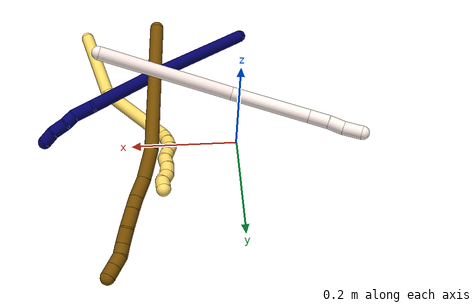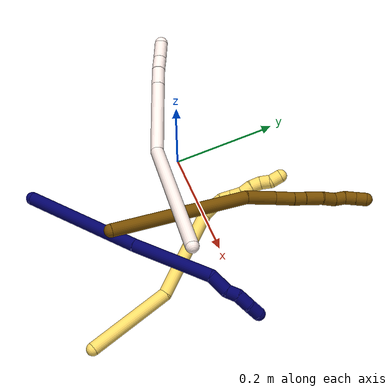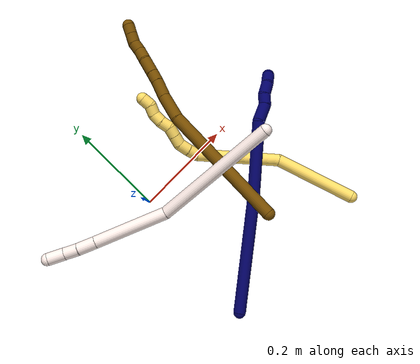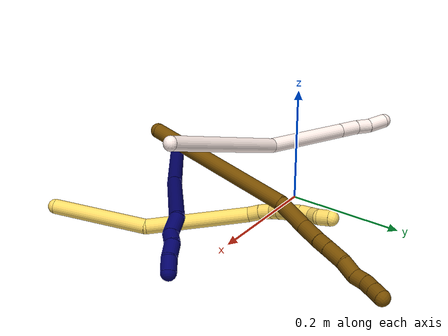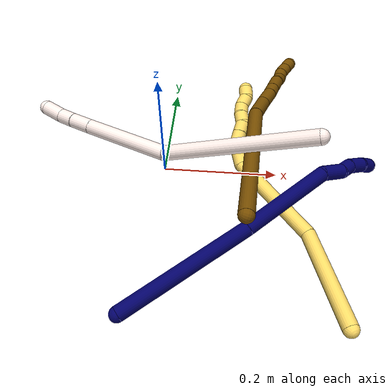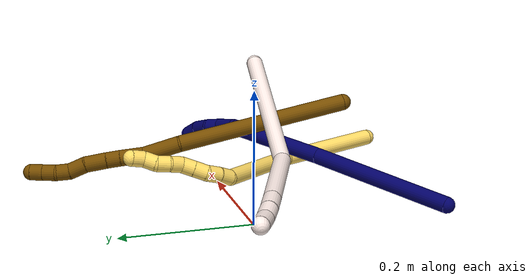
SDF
<sdf version="1.7">
 <world name="default">
  <model name="5">
   <static>0</static>
   <link name="5">
    <collision name="collision-cylinder-e_1_1_4">
     <pose>-0.013303 0.025041 -0.077639 -2.8296 -0.161655 0.95122</pose>
     <geometry><cylinder><radius>0.0125</radius><length>0.16531</length></cylinder></geometry>
     <surface>
      <friction><ode><mu>1.16</mu><mu2>1.16</mu2><slip1>0</slip1><slip2>0</slip2></ode></friction>
      <contact><ode><kp>1e+06</kp><kd>1</kd><max_vel>0</max_vel><min_depth>0.001</min_depth></ode></contact>
     </surface>
    </collision>
    <visual name="visual-cylinder-e_1_1_4">
     <pose>-0.013303 0.025041 -0.077639 -2.8296 -0.161655 0.95122</pose>
     <geometry><cylinder><radius>0.0125</radius><length>0.16531</length></cylinder></geometry>
     <material><ambient>1 0.858824 0.4 1</ambient></material>
    </visual>
    <collision name="collision-cylinder-e_2_4_5">
     <pose>-0.070848 0.05573 -0.22751 -3.06356 -0.548193 2.86569</pose>
     <geometry><cylinder><radius>0.0125</radius><length>0.169784</length></cylinder></geometry>
     <surface>
      <friction><ode><mu>1.16</mu><mu2>1.16</mu2><slip1>0</slip1><slip2>0</slip2></ode></friction>
      <contact><ode><kp>1e+06</kp><kd>1</kd><max_vel>0</max_vel><min_depth>0.001</min_depth></ode></contact>
     </surface>
    </collision>
    <visual name="visual-cylinder-e_2_4_5">
     <pose>-0.070848 0.05573 -0.22751 -3.06356 -0.548193 2.86569</pose>
     <geometry><cylinder><radius>0.0125</radius><length>0.169784</length></cylinder></geometry>
     <material><ambient>1 0.858824 0.4 1</ambient></material>
    </visual>
    <collision name="collision-cylinder-e_3_5_6">
     <pose>-0.119962 0.067182 -0.307572 -2.50363 -0.463655 1.2412</pose>
     <geometry><cylinder><radius>0.0125</radius><length>0.021795</length></cylinder></geometry>
     <surface>
      <friction><ode><mu>1.16</mu><mu2>1.16</mu2><slip1>0</slip1><slip2>0</slip2></ode></friction>
      <contact><ode><kp>1e+06</kp><kd>1</kd><max_vel>0</max_vel><min_depth>0.001</min_depth></ode></contact>
     </surface>
    </collision>
    <visual name="visual-cylinder-e_3_5_6">
     <pose>-0.119962 0.067182 -0.307572 -2.50363 -0.463655 1.2412</pose>
     <geometry><cylinder><radius>0.0125</radius><length>0.021795</length></cylinder></geometry>
     <material><ambient>1 0.858824 0.4 1</ambient></material>
    </visual>
    <collision name="collision-cylinder-e_4_6_7">
     <pose>-0.128486 0.079052 -0.323874 -2.5203 -0.336918 0.974331</pose>
     <geometry><cylinder><radius>0.0125</radius><length>0.02208</length></cylinder></geometry>
     <surface>
      <friction><ode><mu>1.16</mu><mu2>1.16</mu2><slip1>0</slip1><slip2>0</slip2></ode></friction>
      <contact><ode><kp>1e+06</kp><kd>1</kd><max_vel>0</max_vel><min_depth>0.001</min_depth></ode></contact>
     </surface>
    </collision>
    <visual name="visual-cylinder-e_4_6_7">
     <pose>-0.128486 0.079052 -0.323874 -2.5203 -0.336918 0.974331</pose>
     <geometry><cylinder><radius>0.0125</radius><length>0.02208</length></cylinder></geometry>
     <material><ambient>1 0.858824 0.4 1</ambient></material>
    </visual>
    <collision name="collision-cylinder-e_5_7_8">
     <pose>-0.132696 0.093592 -0.338011 -2.16 -0.054917 0.102696</pose>
     <geometry><cylinder><radius>0.0125</radius><length>0.020418</length></cylinder></geometry>
     <surface>
      <friction><ode><mu>1.16</mu><mu2>1.16</mu2><slip1>0</slip1><slip2>0</slip2></ode></friction>
      <contact><ode><kp>1e+06</kp><kd>1</kd><max_vel>0</max_vel><min_depth>0.001</min_depth></ode></contact>
     </surface>
    </collision>
    <visual name="visual-cylinder-e_5_7_8">
     <pose>-0.132696 0.093592 -0.338011 -2.16 -0.054917 0.102696</pose>
     <geometry><cylinder><radius>0.0125</radius><length>0.020418</length></cylinder></geometry>
     <material><ambient>1 0.858824 0.4 1</ambient></material>
    </visual>
    <collision name="collision-cylinder-e_6_8_9">
     <pose>-0.133831 0.110313 -0.349383 -2.17625 -0.057262 0.109198</pose>
     <geometry><cylinder><radius>0.0125</radius><length>0.020089</length></cylinder></geometry>
     <surface>
      <friction><ode><mu>1.16</mu><mu2>1.16</mu2><slip1>0</slip1><slip2>0</slip2></ode></friction>
      <contact><ode><kp>1e+06</kp><kd>1</kd><max_vel>0</max_vel><min_depth>0.001</min_depth></ode></contact>
     </surface>
    </collision>
    <visual name="visual-cylinder-e_6_8_9">
     <pose>-0.133831 0.110313 -0.349383 -2.17625 -0.057262 0.109198</pose>
     <geometry><cylinder><radius>0.0125</radius><length>0.020089</length></cylinder></geometry>
     <material><ambient>1 0.858824 0.4 1</ambient></material>
    </visual>
    <collision name="collision-cylinder-e_7_9_10">
     <pose>-0.137053 0.123781 -0.363444 -2.58285 -0.2625 0.862545</pose>
     <geometry><cylinder><radius>0.0125</radius><length>0.020401</length></cylinder></geometry>
     <surface>
      <friction><ode><mu>1.16</mu><mu2>1.16</mu2><slip1>0</slip1><slip2>0</slip2></ode></friction>
      <contact><ode><kp>1e+06</kp><kd>1</kd><max_vel>0</max_vel><min_depth>0.001</min_depth></ode></contact>
     </surface>
    </collision>
    <visual name="visual-cylinder-e_7_9_10">
     <pose>-0.137053 0.123781 -0.363444 -2.58285 -0.2625 0.862545</pose>
     <geometry><cylinder><radius>0.0125</radius><length>0.020401</length></cylinder></geometry>
     <material><ambient>1 0.858824 0.4 1</ambient></material>
    </visual>
    <collision name="collision-cylinder-e_8_10_11">
     <pose>-0.140044 0.135146 -0.379722 -2.48224 -0.034261 0.100056</pose>
     <geometry><cylinder><radius>0.0125</radius><length>0.020067</length></cylinder></geometry>
     <surface>
      <friction><ode><mu>1.16</mu><mu2>1.16</mu2><slip1>0</slip1><slip2>0</slip2></ode></friction>
      <contact><ode><kp>1e+06</kp><kd>1</kd><max_vel>0</max_vel><min_depth>0.001</min_depth></ode></contact>
     </surface>
    </collision>
    <visual name="visual-cylinder-e_8_10_11">
     <pose>-0.140044 0.135146 -0.379722 -2.48224 -0.034261 0.100056</pose>
     <geometry><cylinder><radius>0.0125</radius><length>0.020067</length></cylinder></geometry>
     <material><ambient>1 0.858824 0.4 1</ambient></material>
    </visual>
    <collision name="collision-cylinder-e_9_11_12">
     <pose>-0.139606 0.150005 -0.392519 -2.08038 0.078068 -0.132928</pose>
     <geometry><cylinder><radius>0.0125</radius><length>0.02003</length></cylinder></geometry>
     <surface>
      <friction><ode><mu>1.16</mu><mu2>1.16</mu2><slip1>0</slip1><slip2>0</slip2></ode></friction>
      <contact><ode><kp>1e+06</kp><kd>1</kd><max_vel>0</max_vel><min_depth>0.001</min_depth></ode></contact>
     </surface>
    </collision>
    <visual name="visual-cylinder-e_9_11_12">
     <pose>-0.139606 0.150005 -0.392519 -2.08038 0.078068 -0.132928</pose>
     <geometry><cylinder><radius>0.0125</radius><length>0.02003</length></cylinder></geometry>
     <material><ambient>1 0.858824 0.4 1</ambient></material>
    </visual>
    <collision name="collision-cylinder-e_10_12_2">
     <pose>-0.140533 0.164527 -0.405366 -2.51237 -0.171415 0.516263</pose>
     <geometry><cylinder><radius>0.0125</radius><length>0.020025</length></cylinder></geometry>
     <surface>
      <friction><ode><mu>1.16</mu><mu2>1.16</mu2><slip1>0</slip1><slip2>0</slip2></ode></friction>
      <contact><ode><kp>1e+06</kp><kd>1</kd><max_vel>0</max_vel><min_depth>0.001</min_depth></ode></contact>
     </surface>
    </collision>
    <visual name="visual-cylinder-e_10_12_2">
     <pose>-0.140533 0.164527 -0.405366 -2.51237 -0.171415 0.516263</pose>
     <geometry><cylinder><radius>0.0125</radius><length>0.020025</length></cylinder></geometry>
     <material><ambient>1 0.858824 0.4 1</ambient></material>
    </visual>
    <collision name="collision-sphere-2">
     <pose>-0.142241 0.170333 -0.413342 0 -0 0</pose>
     <geometry><sphere><radius>0.0125</radius></sphere></geometry>
     <surface>
      <friction><ode><mu>1.16</mu><mu2>1.16</mu2><slip1>0</slip1><slip2>0</slip2></ode></friction>
      <contact><ode><kp>1e+06</kp><kd>1</kd><max_vel>0</max_vel><min_depth>0.001</min_depth></ode></contact>
     </surface>
    </collision>
    <visual name="visual-sphere-2">
     <pose>-0.142241 0.170333 -0.413342 0 -0 0</pose>
     <geometry><sphere><radius>0.0125</radius></sphere></geometry>
     <material><ambient>1 0.858824 0.4 1</ambient></material>
    </visual>
    <collision name="collision-sphere-12">
     <pose>-0.138825 0.158721 -0.397389 0 -0 0</pose>
     <geometry><sphere><radius>0.0125</radius></sphere></geometry>
     <surface>
      <friction><ode><mu>1.16</mu><mu2>1.16</mu2><slip1>0</slip1><slip2>0</slip2></ode></friction>
      <contact><ode><kp>1e+06</kp><kd>1</kd><max_vel>0</max_vel><min_depth>0.001</min_depth></ode></contact>
     </surface>
    </collision>
    <visual name="visual-sphere-12">
     <pose>-0.138825 0.158721 -0.397389 0 -0 0</pose>
     <geometry><sphere><radius>0.0125</radius></sphere></geometry>
     <material><ambient>1 0.858824 0.4 1</ambient></material>
    </visual>
    <collision name="collision-sphere-11">
     <pose>-0.140387 0.141289 -0.387648 0 -0 0</pose>
     <geometry><sphere><radius>0.0125</radius></sphere></geometry>
     <surface>
      <friction><ode><mu>1.16</mu><mu2>1.16</mu2><slip1>0</slip1><slip2>0</slip2></ode></friction>
      <contact><ode><kp>1e+06</kp><kd>1</kd><max_vel>0</max_vel><min_depth>0.001</min_depth></ode></contact>
     </surface>
    </collision>
    <visual name="visual-sphere-11">
     <pose>-0.140387 0.141289 -0.387648 0 -0 0</pose>
     <geometry><sphere><radius>0.0125</radius></sphere></geometry>
     <material><ambient>1 0.858824 0.4 1</ambient></material>
    </visual>
    <collision name="collision-sphere-10">
     <pose>-0.1397 0.129003 -0.371797 0 -0 0</pose>
     <geometry><sphere><radius>0.0125</radius></sphere></geometry>
     <surface>
      <friction><ode><mu>1.16</mu><mu2>1.16</mu2><slip1>0</slip1><slip2>0</slip2></ode></friction>
      <contact><ode><kp>1e+06</kp><kd>1</kd><max_vel>0</max_vel><min_depth>0.001</min_depth></ode></contact>
     </surface>
    </collision>
    <visual name="visual-sphere-10">
     <pose>-0.1397 0.129003 -0.371797 0 -0 0</pose>
     <geometry><sphere><radius>0.0125</radius></sphere></geometry>
     <material><ambient>1 0.858824 0.4 1</ambient></material>
    </visual>
    <collision name="collision-sphere-9">
     <pose>-0.134406 0.118558 -0.355091 0 -0 0</pose>
     <geometry><sphere><radius>0.0125</radius></sphere></geometry>
     <surface>
      <friction><ode><mu>1.16</mu><mu2>1.16</mu2><slip1>0</slip1><slip2>0</slip2></ode></friction>
      <contact><ode><kp>1e+06</kp><kd>1</kd><max_vel>0</max_vel><min_depth>0.001</min_depth></ode></contact>
     </surface>
    </collision>
    <visual name="visual-sphere-9">
     <pose>-0.134406 0.118558 -0.355091 0 -0 0</pose>
     <geometry><sphere><radius>0.0125</radius></sphere></geometry>
     <material><ambient>1 0.858824 0.4 1</ambient></material>
    </visual>
    <collision name="collision-sphere-4">
     <pose>-0.026607 0.050082 -0.155278 0 -0 0</pose>
     <geometry><sphere><radius>0.0125</radius></sphere></geometry>
     <surface>
      <friction><ode><mu>1.16</mu><mu2>1.16</mu2><slip1>0</slip1><slip2>0</slip2></ode></friction>
      <contact><ode><kp>1e+06</kp><kd>1</kd><max_vel>0</max_vel><min_depth>0.001</min_depth></ode></contact>
     </surface>
    </collision>
    <visual name="visual-sphere-4">
     <pose>-0.026607 0.050082 -0.155278 0 -0 0</pose>
     <geometry><sphere><radius>0.0125</radius></sphere></geometry>
     <material><ambient>1 0.858824 0.4 1</ambient></material>
    </visual>
    <collision name="collision-sphere-1">
     <geometry><sphere><radius>0.0125</radius></sphere></geometry>
     <surface>
      <friction><ode><mu>1.16</mu><mu2>1.16</mu2><slip1>0</slip1><slip2>0</slip2></ode></friction>
      <contact><ode><kp>1e+06</kp><kd>1</kd><max_vel>0</max_vel><min_depth>0.001</min_depth></ode></contact>
     </surface>
    </collision>
    <visual name="visual-sphere-1">
     <geometry><sphere><radius>0.0125</radius></sphere></geometry>
     <material><ambient>1 0.858824 0.4 1</ambient></material>
    </visual>
    <collision name="collision-sphere-8">
     <pose>-0.133256 0.102067 -0.343676 0 -0 0</pose>
     <geometry><sphere><radius>0.0125</radius></sphere></geometry>
     <surface>
      <friction><ode><mu>1.16</mu><mu2>1.16</mu2><slip1>0</slip1><slip2>0</slip2></ode></friction>
      <contact><ode><kp>1e+06</kp><kd>1</kd><max_vel>0</max_vel><min_depth>0.001</min_depth></ode></contact>
     </surface>
    </collision>
    <visual name="visual-sphere-8">
     <pose>-0.133256 0.102067 -0.343676 0 -0 0</pose>
     <geometry><sphere><radius>0.0125</radius></sphere></geometry>
     <material><ambient>1 0.858824 0.4 1</ambient></material>
    </visual>
    <collision name="collision-sphere-5">
     <pose>-0.115089 0.061378 -0.299742 0 -0 0</pose>
     <geometry><sphere><radius>0.0125</radius></sphere></geometry>
     <surface>
      <friction><ode><mu>1.16</mu><mu2>1.16</mu2><slip1>0</slip1><slip2>0</slip2></ode></friction>
      <contact><ode><kp>1e+06</kp><kd>1</kd><max_vel>0</max_vel><min_depth>0.001</min_depth></ode></contact>
     </surface>
    </collision>
    <visual name="visual-sphere-5">
     <pose>-0.115089 0.061378 -0.299742 0 -0 0</pose>
     <geometry><sphere><radius>0.0125</radius></sphere></geometry>
     <material><ambient>1 0.858824 0.4 1</ambient></material>
    </visual>
    <collision name="collision-sphere-6">
     <pose>-0.124836 0.072987 -0.315402 0 -0 0</pose>
     <geometry><sphere><radius>0.0125</radius></sphere></geometry>
     <surface>
      <friction><ode><mu>1.16</mu><mu2>1.16</mu2><slip1>0</slip1><slip2>0</slip2></ode></friction>
      <contact><ode><kp>1e+06</kp><kd>1</kd><max_vel>0</max_vel><min_depth>0.001</min_depth></ode></contact>
     </surface>
    </collision>
    <visual name="visual-sphere-6">
     <pose>-0.124836 0.072987 -0.315402 0 -0 0</pose>
     <geometry><sphere><radius>0.0125</radius></sphere></geometry>
     <material><ambient>1 0.858824 0.4 1</ambient></material>
    </visual>
    <collision name="collision-sphere-7">
     <pose>-0.132135 0.085117 -0.332347 0 -0 0</pose>
     <geometry><sphere><radius>0.0125</radius></sphere></geometry>
     <surface>
      <friction><ode><mu>1.16</mu><mu2>1.16</mu2><slip1>0</slip1><slip2>0</slip2></ode></friction>
      <contact><ode><kp>1e+06</kp><kd>1</kd><max_vel>0</max_vel><min_depth>0.001</min_depth></ode></contact>
     </surface>
    </collision>
    <visual name="visual-sphere-7">
     <pose>-0.132135 0.085117 -0.332347 0 -0 0</pose>
     <geometry><sphere><radius>0.0125</radius></sphere></geometry>
     <material><ambient>1 0.858824 0.4 1</ambient></material>
    </visual>
    <inertial>
     <pose>-0.072589 0.06495 -0.220503 0 -0 0</pose>
     <mass>0.5</mass>
     <inertia>
      <ixx>0.000286</ixx>
      <ixy>0</ixy>
      <ixz>0</ixz>
      <iyy>0.000623</iyy>
      <iyz>0</iyz>
      <izz>9.6e-05</izz>
     </inertia>
    </inertial>
   </link>
   <pose>0.297175 -0.288507 0.020417 1.0368 0.754794 0.025374</pose>
  </model>
  <model name="7">
   <static>0</static>
   <link name="7">
    <collision name="collision-cylinder-e_1_1_4">
     <pose>0.041002 0.048602 0.096098 -0.468242 0.363798 -0.087677</pose>
     <geometry><cylinder><radius>0.0125</radius><length>0.230461</length></cylinder></geometry>
     <surface>
      <friction><ode><mu>1.16</mu><mu2>1.16</mu2><slip1>0</slip1><slip2>0</slip2></ode></friction>
      <contact><ode><kp>1e+06</kp><kd>1</kd><max_vel>0</max_vel><min_depth>0.001</min_depth></ode></contact>
     </surface>
    </collision>
    <visual name="visual-cylinder-e_1_1_4">
     <pose>0.041002 0.048602 0.096098 -0.468242 0.363798 -0.087677</pose>
     <geometry><cylinder><radius>0.0125</radius><length>0.230461</length></cylinder></geometry>
     <material><ambient>0.003922 0 0.403922 1</ambient></material>
    </visual>
    <collision name="collision-cylinder-e_2_4_5">
     <pose>0.113108 0.127597 0.258625 -0.429092 0.402527 -0.088856</pose>
     <geometry><cylinder><radius>0.0125</radius><length>0.158796</length></cylinder></geometry>
     <surface>
      <friction><ode><mu>1.16</mu><mu2>1.16</mu2><slip1>0</slip1><slip2>0</slip2></ode></friction>
      <contact><ode><kp>1e+06</kp><kd>1</kd><max_vel>0</max_vel><min_depth>0.001</min_depth></ode></contact>
     </surface>
    </collision>
    <visual name="visual-cylinder-e_2_4_5">
     <pose>0.113108 0.127597 0.258625 -0.429092 0.402527 -0.088856</pose>
     <geometry><cylinder><radius>0.0125</radius><length>0.158796</length></cylinder></geometry>
     <material><ambient>0.003922 0 0.403922 1</ambient></material>
    </visual>
    <collision name="collision-cylinder-e_3_5_6">
     <pose>0.143293 0.164333 0.342697 -0.345155 -0.048934 0.008531</pose>
     <geometry><cylinder><radius>0.0125</radius><length>0.037542</length></cylinder></geometry>
     <surface>
      <friction><ode><mu>1.16</mu><mu2>1.16</mu2><slip1>0</slip1><slip2>0</slip2></ode></friction>
      <contact><ode><kp>1e+06</kp><kd>1</kd><max_vel>0</max_vel><min_depth>0.001</min_depth></ode></contact>
     </surface>
    </collision>
    <visual name="visual-cylinder-e_3_5_6">
     <pose>0.143293 0.164333 0.342697 -0.345155 -0.048934 0.008531</pose>
     <geometry><cylinder><radius>0.0125</radius><length>0.037542</length></cylinder></geometry>
     <material><ambient>0.003922 0 0.403922 1</ambient></material>
    </visual>
    <collision name="collision-cylinder-e_4_6_7">
     <pose>0.145418 0.171748 0.370747 -0.10255 0.283052 -0.014624</pose>
     <geometry><cylinder><radius>0.0125</radius><length>0.021792</length></cylinder></geometry>
     <surface>
      <friction><ode><mu>1.16</mu><mu2>1.16</mu2><slip1>0</slip1><slip2>0</slip2></ode></friction>
      <contact><ode><kp>1e+06</kp><kd>1</kd><max_vel>0</max_vel><min_depth>0.001</min_depth></ode></contact>
     </surface>
    </collision>
    <visual name="visual-cylinder-e_4_6_7">
     <pose>0.145418 0.171748 0.370747 -0.10255 0.283052 -0.014624</pose>
     <geometry><cylinder><radius>0.0125</radius><length>0.021792</length></cylinder></geometry>
     <material><ambient>0.003922 0 0.403922 1</ambient></material>
    </visual>
    <collision name="collision-cylinder-e_5_7_8">
     <pose>0.147781 0.17562 0.394431 -0.207908 -0.050065 0.005224</pose>
     <geometry><cylinder><radius>0.0125</radius><length>0.027171</length></cylinder></geometry>
     <surface>
      <friction><ode><mu>1.16</mu><mu2>1.16</mu2><slip1>0</slip1><slip2>0</slip2></ode></friction>
      <contact><ode><kp>1e+06</kp><kd>1</kd><max_vel>0</max_vel><min_depth>0.001</min_depth></ode></contact>
     </surface>
    </collision>
    <visual name="visual-cylinder-e_5_7_8">
     <pose>0.147781 0.17562 0.394431 -0.207908 -0.050065 0.005224</pose>
     <geometry><cylinder><radius>0.0125</radius><length>0.027171</length></cylinder></geometry>
     <material><ambient>0.003922 0 0.403922 1</ambient></material>
    </visual>
    <collision name="collision-cylinder-e_6_8_2">
     <pose>0.145517 0.177542 0.41969 0.073211 -0.131089 -0.004808</pose>
     <geometry><cylinder><radius>0.0125</radius><length>0.024238</length></cylinder></geometry>
     <surface>
      <friction><ode><mu>1.16</mu><mu2>1.16</mu2><slip1>0</slip1><slip2>0</slip2></ode></friction>
      <contact><ode><kp>1e+06</kp><kd>1</kd><max_vel>0</max_vel><min_depth>0.001</min_depth></ode></contact>
     </surface>
    </collision>
    <visual name="visual-cylinder-e_6_8_2">
     <pose>0.145517 0.177542 0.41969 0.073211 -0.131089 -0.004808</pose>
     <geometry><cylinder><radius>0.0125</radius><length>0.024238</length></cylinder></geometry>
     <material><ambient>0.003922 0 0.403922 1</ambient></material>
    </visual>
    <collision name="collision-sphere-2">
     <pose>0.143933 0.176663 0.431673 0 -0 0</pose>
     <geometry><sphere><radius>0.0125</radius></sphere></geometry>
     <surface>
      <friction><ode><mu>1.16</mu><mu2>1.16</mu2><slip1>0</slip1><slip2>0</slip2></ode></friction>
      <contact><ode><kp>1e+06</kp><kd>1</kd><max_vel>0</max_vel><min_depth>0.001</min_depth></ode></contact>
     </surface>
    </collision>
    <visual name="visual-sphere-2">
     <pose>0.143933 0.176663 0.431673 0 -0 0</pose>
     <geometry><sphere><radius>0.0125</radius></sphere></geometry>
     <material><ambient>0.003922 0 0.403922 1</ambient></material>
    </visual>
    <collision name="collision-sphere-4">
     <pose>0.082004 0.097204 0.192195 0 -0 0</pose>
     <geometry><sphere><radius>0.0125</radius></sphere></geometry>
     <surface>
      <friction><ode><mu>1.16</mu><mu2>1.16</mu2><slip1>0</slip1><slip2>0</slip2></ode></friction>
      <contact><ode><kp>1e+06</kp><kd>1</kd><max_vel>0</max_vel><min_depth>0.001</min_depth></ode></contact>
     </surface>
    </collision>
    <visual name="visual-sphere-4">
     <pose>0.082004 0.097204 0.192195 0 -0 0</pose>
     <geometry><sphere><radius>0.0125</radius></sphere></geometry>
     <material><ambient>0.003922 0 0.403922 1</ambient></material>
    </visual>
    <collision name="collision-sphere-1">
     <geometry><sphere><radius>0.0125</radius></sphere></geometry>
     <surface>
      <friction><ode><mu>1.16</mu><mu2>1.16</mu2><slip1>0</slip1><slip2>0</slip2></ode></friction>
      <contact><ode><kp>1e+06</kp><kd>1</kd><max_vel>0</max_vel><min_depth>0.001</min_depth></ode></contact>
     </surface>
    </collision>
    <visual name="visual-sphere-1">
     <geometry><sphere><radius>0.0125</radius></sphere></geometry>
     <material><ambient>0.003922 0 0.403922 1</ambient></material>
    </visual>
    <collision name="collision-sphere-8">
     <pose>0.147102 0.17842 0.407708 0 -0 0</pose>
     <geometry><sphere><radius>0.0125</radius></sphere></geometry>
     <surface>
      <friction><ode><mu>1.16</mu><mu2>1.16</mu2><slip1>0</slip1><slip2>0</slip2></ode></friction>
      <contact><ode><kp>1e+06</kp><kd>1</kd><max_vel>0</max_vel><min_depth>0.001</min_depth></ode></contact>
     </surface>
    </collision>
    <visual name="visual-sphere-8">
     <pose>0.147102 0.17842 0.407708 0 -0 0</pose>
     <geometry><sphere><radius>0.0125</radius></sphere></geometry>
     <material><ambient>0.003922 0 0.403922 1</ambient></material>
    </visual>
    <collision name="collision-sphere-5">
     <pose>0.144211 0.15799 0.325054 0 -0 0</pose>
     <geometry><sphere><radius>0.0125</radius></sphere></geometry>
     <surface>
      <friction><ode><mu>1.16</mu><mu2>1.16</mu2><slip1>0</slip1><slip2>0</slip2></ode></friction>
      <contact><ode><kp>1e+06</kp><kd>1</kd><max_vel>0</max_vel><min_depth>0.001</min_depth></ode></contact>
     </surface>
    </collision>
    <visual name="visual-sphere-5">
     <pose>0.144211 0.15799 0.325054 0 -0 0</pose>
     <geometry><sphere><radius>0.0125</radius></sphere></geometry>
     <material><ambient>0.003922 0 0.403922 1</ambient></material>
    </visual>
    <collision name="collision-sphere-6">
     <pose>0.142375 0.170677 0.36034 0 -0 0</pose>
     <geometry><sphere><radius>0.0125</radius></sphere></geometry>
     <surface>
      <friction><ode><mu>1.16</mu><mu2>1.16</mu2><slip1>0</slip1><slip2>0</slip2></ode></friction>
      <contact><ode><kp>1e+06</kp><kd>1</kd><max_vel>0</max_vel><min_depth>0.001</min_depth></ode></contact>
     </surface>
    </collision>
    <visual name="visual-sphere-6">
     <pose>0.142375 0.170677 0.36034 0 -0 0</pose>
     <geometry><sphere><radius>0.0125</radius></sphere></geometry>
     <material><ambient>0.003922 0 0.403922 1</ambient></material>
    </visual>
    <collision name="collision-sphere-7">
     <pose>0.148461 0.172819 0.381155 0 -0 0</pose>
     <geometry><sphere><radius>0.0125</radius></sphere></geometry>
     <surface>
      <friction><ode><mu>1.16</mu><mu2>1.16</mu2><slip1>0</slip1><slip2>0</slip2></ode></friction>
      <contact><ode><kp>1e+06</kp><kd>1</kd><max_vel>0</max_vel><min_depth>0.001</min_depth></ode></contact>
     </surface>
    </collision>
    <visual name="visual-sphere-7">
     <pose>0.148461 0.172819 0.381155 0 -0 0</pose>
     <geometry><sphere><radius>0.0125</radius></sphere></geometry>
     <material><ambient>0.003922 0 0.403922 1</ambient></material>
    </visual>
    <inertial>
     <pose>0.087003 0.1009 0.210099 0 -0 0</pose>
     <mass>0.5</mass>
     <inertia>
      <ixx>0.001181</ixx>
      <ixy>0</ixy>
      <ixz>0</ixz>
      <iyy>0.001156</iyy>
      <iyz>0</iyz>
      <izz>-0.001032</izz>
     </inertia>
    </inertial>
   </link>
   <pose>-0.030501 -0.288502 0.012385 2.13813 -0.648195 1.87666</pose>
  </model>
  <model name="11">
   <static>0</static>
   <link name="11">
    <collision name="collision-cylinder-e_1_1_4">
     <pose>-0.000436 0.000507 -0.126594 -3.13759 -0.003444 1.42102</pose>
     <geometry><cylinder><radius>0.0125</radius><length>0.253191</length></cylinder></geometry>
     <surface>
      <friction><ode><mu>1.16</mu><mu2>1.16</mu2><slip1>0</slip1><slip2>0</slip2></ode></friction>
      <contact><ode><kp>1e+06</kp><kd>1</kd><max_vel>0</max_vel><min_depth>0.001</min_depth></ode></contact>
     </surface>
    </collision>
    <visual name="visual-cylinder-e_1_1_4">
     <pose>-0.000436 0.000507 -0.126594 -3.13759 -0.003444 1.42102</pose>
     <geometry><cylinder><radius>0.0125</radius><length>0.253191</length></cylinder></geometry>
     <material><ambient>1 0.933333 0.909804 1</ambient></material>
    </visual>
    <collision name="collision-cylinder-e_2_4_5">
     <pose>-0.015522 0.026779 -0.321045 -2.77872 -0.199155 0.997354</pose>
     <geometry><cylinder><radius>0.0125</radius><length>0.148096</length></cylinder></geometry>
     <surface>
      <friction><ode><mu>1.16</mu><mu2>1.16</mu2><slip1>0</slip1><slip2>0</slip2></ode></friction>
      <contact><ode><kp>1e+06</kp><kd>1</kd><max_vel>0</max_vel><min_depth>0.001</min_depth></ode></contact>
     </surface>
    </collision>
    <visual name="visual-cylinder-e_2_4_5">
     <pose>-0.015522 0.026779 -0.321045 -2.77872 -0.199155 0.997354</pose>
     <geometry><cylinder><radius>0.0125</radius><length>0.148096</length></cylinder></geometry>
     <material><ambient>1 0.933333 0.909804 1</ambient></material>
    </visual>
    <collision name="collision-cylinder-e_3_5_6">
     <pose>-0.033802 0.059067 -0.405467 -2.76643 -0.201171 0.977399</pose>
     <geometry><cylinder><radius>0.0125</radius><length>0.036339</length></cylinder></geometry>
     <surface>
      <friction><ode><mu>1.16</mu><mu2>1.16</mu2><slip1>0</slip1><slip2>0</slip2></ode></friction>
      <contact><ode><kp>1e+06</kp><kd>1</kd><max_vel>0</max_vel><min_depth>0.001</min_depth></ode></contact>
     </surface>
    </collision>
    <visual name="visual-cylinder-e_3_5_6">
     <pose>-0.033802 0.059067 -0.405467 -2.76643 -0.201171 0.977399</pose>
     <geometry><cylinder><radius>0.0125</radius><length>0.036339</length></cylinder></geometry>
     <material><ambient>1 0.933333 0.909804 1</ambient></material>
    </visual>
    <collision name="collision-cylinder-e_4_6_7">
     <pose>-0.039083 0.071265 -0.434892 -2.726 -0.116897 0.541442</pose>
     <geometry><cylinder><radius>0.0125</radius><length>0.028305</length></cylinder></geometry>
     <surface>
      <friction><ode><mu>1.16</mu><mu2>1.16</mu2><slip1>0</slip1><slip2>0</slip2></ode></friction>
      <contact><ode><kp>1e+06</kp><kd>1</kd><max_vel>0</max_vel><min_depth>0.001</min_depth></ode></contact>
     </surface>
    </collision>
    <visual name="visual-cylinder-e_4_6_7">
     <pose>-0.039083 0.071265 -0.434892 -2.726 -0.116897 0.541442</pose>
     <geometry><cylinder><radius>0.0125</radius><length>0.028305</length></cylinder></geometry>
     <material><ambient>1 0.933333 0.909804 1</ambient></material>
    </visual>
    <collision name="collision-cylinder-e_5_7_2">
     <pose>-0.045828 0.08454 -0.46212 -2.65505 -0.303705 1.10508</pose>
     <geometry><cylinder><radius>0.0125</radius><length>0.034069</length></cylinder></geometry>
     <surface>
      <friction><ode><mu>1.16</mu><mu2>1.16</mu2><slip1>0</slip1><slip2>0</slip2></ode></friction>
      <contact><ode><kp>1e+06</kp><kd>1</kd><max_vel>0</max_vel><min_depth>0.001</min_depth></ode></contact>
     </surface>
    </collision>
    <visual name="visual-cylinder-e_5_7_2">
     <pose>-0.045828 0.08454 -0.46212 -2.65505 -0.303705 1.10508</pose>
     <geometry><cylinder><radius>0.0125</radius><length>0.034069</length></cylinder></geometry>
     <material><ambient>1 0.933333 0.909804 1</ambient></material>
    </visual>
    <collision name="collision-sphere-2">
     <pose>-0.050923 0.092141 -0.476489 0 -0 0</pose>
     <geometry><sphere><radius>0.0125</radius></sphere></geometry>
     <surface>
      <friction><ode><mu>1.16</mu><mu2>1.16</mu2><slip1>0</slip1><slip2>0</slip2></ode></friction>
      <contact><ode><kp>1e+06</kp><kd>1</kd><max_vel>0</max_vel><min_depth>0.001</min_depth></ode></contact>
     </surface>
    </collision>
    <visual name="visual-sphere-2">
     <pose>-0.050923 0.092141 -0.476489 0 -0 0</pose>
     <geometry><sphere><radius>0.0125</radius></sphere></geometry>
     <material><ambient>1 0.933333 0.909804 1</ambient></material>
    </visual>
    <collision name="collision-sphere-7">
     <pose>-0.040734 0.07694 -0.447751 0 -0 0</pose>
     <geometry><sphere><radius>0.0125</radius></sphere></geometry>
     <surface>
      <friction><ode><mu>1.16</mu><mu2>1.16</mu2><slip1>0</slip1><slip2>0</slip2></ode></friction>
      <contact><ode><kp>1e+06</kp><kd>1</kd><max_vel>0</max_vel><min_depth>0.001</min_depth></ode></contact>
     </surface>
    </collision>
    <visual name="visual-sphere-7">
     <pose>-0.040734 0.07694 -0.447751 0 -0 0</pose>
     <geometry><sphere><radius>0.0125</radius></sphere></geometry>
     <material><ambient>1 0.933333 0.909804 1</ambient></material>
    </visual>
    <collision name="collision-sphere-6">
     <pose>-0.037433 0.06559 -0.422032 0 -0 0</pose>
     <geometry><sphere><radius>0.0125</radius></sphere></geometry>
     <surface>
      <friction><ode><mu>1.16</mu><mu2>1.16</mu2><slip1>0</slip1><slip2>0</slip2></ode></friction>
      <contact><ode><kp>1e+06</kp><kd>1</kd><max_vel>0</max_vel><min_depth>0.001</min_depth></ode></contact>
     </surface>
    </collision>
    <visual name="visual-sphere-6">
     <pose>-0.037433 0.06559 -0.422032 0 -0 0</pose>
     <geometry><sphere><radius>0.0125</radius></sphere></geometry>
     <material><ambient>1 0.933333 0.909804 1</ambient></material>
    </visual>
    <collision name="collision-sphere-5">
     <pose>-0.030172 0.052544 -0.388903 0 -0 0</pose>
     <geometry><sphere><radius>0.0125</radius></sphere></geometry>
     <surface>
      <friction><ode><mu>1.16</mu><mu2>1.16</mu2><slip1>0</slip1><slip2>0</slip2></ode></friction>
      <contact><ode><kp>1e+06</kp><kd>1</kd><max_vel>0</max_vel><min_depth>0.001</min_depth></ode></contact>
     </surface>
    </collision>
    <visual name="visual-sphere-5">
     <pose>-0.030172 0.052544 -0.388903 0 -0 0</pose>
     <geometry><sphere><radius>0.0125</radius></sphere></geometry>
     <material><ambient>1 0.933333 0.909804 1</ambient></material>
    </visual>
    <collision name="collision-sphere-1">
     <geometry><sphere><radius>0.0125</radius></sphere></geometry>
     <surface>
      <friction><ode><mu>1.16</mu><mu2>1.16</mu2><slip1>0</slip1><slip2>0</slip2></ode></friction>
      <contact><ode><kp>1e+06</kp><kd>1</kd><max_vel>0</max_vel><min_depth>0.001</min_depth></ode></contact>
     </surface>
    </collision>
    <visual name="visual-sphere-1">
     <geometry><sphere><radius>0.0125</radius></sphere></geometry>
     <material><ambient>1 0.933333 0.909804 1</ambient></material>
    </visual>
    <collision name="collision-sphere-4">
     <pose>-0.000872 0.001014 -0.253187 0 -0 0</pose>
     <geometry><sphere><radius>0.0125</radius></sphere></geometry>
     <surface>
      <friction><ode><mu>1.16</mu><mu2>1.16</mu2><slip1>0</slip1><slip2>0</slip2></ode></friction>
      <contact><ode><kp>1e+06</kp><kd>1</kd><max_vel>0</max_vel><min_depth>0.001</min_depth></ode></contact>
     </surface>
    </collision>
    <visual name="visual-sphere-4">
     <pose>-0.000872 0.001014 -0.253187 0 -0 0</pose>
     <geometry><sphere><radius>0.0125</radius></sphere></geometry>
     <material><ambient>1 0.933333 0.909804 1</ambient></material>
    </visual>
    <inertial>
     <pose>-0.01261 0.022276 -0.244771 0 -0 0</pose>
     <mass>0.5</mass>
     <inertia>
      <ixx>0.001939</ixx>
      <ixy>0</ixy>
      <ixz>0</ixz>
      <iyy>0.001259</iyy>
      <iyz>0</iyz>
      <izz>-8.2e-05</izz>
     </inertia>
    </inertial>
   </link>
   <pose>0.245763 -0.074195 0.176728 0.665399 1.12138 0.596196</pose>
  </model>
  <model name="12">
   <static>0</static>
   <link name="12">
    <collision name="collision-cylinder-e_1_1_4">
     <pose>0.071569 0.109993 -0.006945 -1.63385 0.575938 -0.611218</pose>
     <geometry><cylinder><radius>0.0125</radius><length>0.262821</length></cylinder></geometry>
     <surface>
      <friction><ode><mu>1.16</mu><mu2>1.16</mu2><slip1>0</slip1><slip2>0</slip2></ode></friction>
      <contact><ode><kp>1e+06</kp><kd>1</kd><max_vel>0</max_vel><min_depth>0.001</min_depth></ode></contact>
     </surface>
    </collision>
    <visual name="visual-cylinder-e_1_1_4">
     <pose>0.071569 0.109993 -0.006945 -1.63385 0.575938 -0.611218</pose>
     <geometry><cylinder><radius>0.0125</radius><length>0.262821</length></cylinder></geometry>
     <material><ambient>0.466667 0.301961 0 1</ambient></material>
    </visual>
    <collision name="collision-cylinder-e_2_4_5">
     <pose>0.156472 0.243548 -0.022044 -1.90399 0.491057 -0.67672</pose>
     <geometry><cylinder><radius>0.0125</radius><length>0.056551</length></cylinder></geometry>
     <surface>
      <friction><ode><mu>1.16</mu><mu2>1.16</mu2><slip1>0</slip1><slip2>0</slip2></ode></friction>
      <contact><ode><kp>1e+06</kp><kd>1</kd><max_vel>0</max_vel><min_depth>0.001</min_depth></ode></contact>
     </surface>
    </collision>
    <visual name="visual-cylinder-e_2_4_5">
     <pose>0.156472 0.243548 -0.022044 -1.90399 0.491057 -0.67672</pose>
     <geometry><cylinder><radius>0.0125</radius><length>0.056551</length></cylinder></geometry>
     <material><ambient>0.466667 0.301961 0 1</ambient></material>
    </visual>
    <collision name="collision-cylinder-e_3_5_6">
     <pose>0.180827 0.280369 -0.036372 -2.00656 0.645866 -0.966838</pose>
     <geometry><cylinder><radius>0.0125</radius><length>0.036625</length></cylinder></geometry>
     <surface>
      <friction><ode><mu>1.16</mu><mu2>1.16</mu2><slip1>0</slip1><slip2>0</slip2></ode></friction>
      <contact><ode><kp>1e+06</kp><kd>1</kd><max_vel>0</max_vel><min_depth>0.001</min_depth></ode></contact>
     </surface>
    </collision>
    <visual name="visual-cylinder-e_3_5_6">
     <pose>0.180827 0.280369 -0.036372 -2.00656 0.645866 -0.966838</pose>
     <geometry><cylinder><radius>0.0125</radius><length>0.036625</length></cylinder></geometry>
     <material><ambient>0.466667 0.301961 0 1</ambient></material>
    </visual>
    <collision name="collision-cylinder-e_4_6_7">
     <pose>0.198361 0.301933 -0.045502 -1.91276 0.636104 -0.873228</pose>
     <geometry><cylinder><radius>0.0125</radius><length>0.021922</length></cylinder></geometry>
     <surface>
      <friction><ode><mu>1.16</mu><mu2>1.16</mu2><slip1>0</slip1><slip2>0</slip2></ode></friction>
      <contact><ode><kp>1e+06</kp><kd>1</kd><max_vel>0</max_vel><min_depth>0.001</min_depth></ode></contact>
     </surface>
    </collision>
    <visual name="visual-cylinder-e_4_6_7">
     <pose>0.198361 0.301933 -0.045502 -1.91276 0.636104 -0.873228</pose>
     <geometry><cylinder><radius>0.0125</radius><length>0.021922</length></cylinder></geometry>
     <material><ambient>0.466667 0.301961 0 1</ambient></material>
    </visual>
    <collision name="collision-cylinder-e_5_7_8">
     <pose>0.214422 0.323241 -0.052948 -1.90333 0.606897 -0.828016</pose>
     <geometry><cylinder><radius>0.0125</radius><length>0.033489</length></cylinder></geometry>
     <surface>
      <friction><ode><mu>1.16</mu><mu2>1.16</mu2><slip1>0</slip1><slip2>0</slip2></ode></friction>
      <contact><ode><kp>1e+06</kp><kd>1</kd><max_vel>0</max_vel><min_depth>0.001</min_depth></ode></contact>
     </surface>
    </collision>
    <visual name="visual-cylinder-e_5_7_8">
     <pose>0.214422 0.323241 -0.052948 -1.90333 0.606897 -0.828016</pose>
     <geometry><cylinder><radius>0.0125</radius><length>0.033489</length></cylinder></geometry>
     <material><ambient>0.466667 0.301961 0 1</ambient></material>
    </visual>
    <collision name="collision-cylinder-e_6_8_9">
     <pose>0.229004 0.34805 -0.062055 -1.94345 0.377809 -0.54604</pose>
     <geometry><cylinder><radius>0.0125</radius><length>0.027282</length></cylinder></geometry>
     <surface>
      <friction><ode><mu>1.16</mu><mu2>1.16</mu2><slip1>0</slip1><slip2>0</slip2></ode></friction>
      <contact><ode><kp>1e+06</kp><kd>1</kd><max_vel>0</max_vel><min_depth>0.001</min_depth></ode></contact>
     </surface>
    </collision>
    <visual name="visual-cylinder-e_6_8_9">
     <pose>0.229004 0.34805 -0.062055 -1.94345 0.377809 -0.54604</pose>
     <geometry><cylinder><radius>0.0125</radius><length>0.027282</length></cylinder></geometry>
     <material><ambient>0.466667 0.301961 0 1</ambient></material>
    </visual>
    <collision name="collision-cylinder-e_7_9_10">
     <pose>0.240878 0.367554 -0.068081 -1.75204 0.71854 -0.846788</pose>
     <geometry><cylinder><radius>0.0125</radius><length>0.020786</length></cylinder></geometry>
     <surface>
      <friction><ode><mu>1.16</mu><mu2>1.16</mu2><slip1>0</slip1><slip2>0</slip2></ode></friction>
      <contact><ode><kp>1e+06</kp><kd>1</kd><max_vel>0</max_vel><min_depth>0.001</min_depth></ode></contact>
     </surface>
    </collision>
    <visual name="visual-cylinder-e_7_9_10">
     <pose>0.240878 0.367554 -0.068081 -1.75204 0.71854 -0.846788</pose>
     <geometry><cylinder><radius>0.0125</radius><length>0.020786</length></cylinder></geometry>
     <material><ambient>0.466667 0.301961 0 1</ambient></material>
    </visual>
    <collision name="collision-cylinder-e_8_10_11">
     <pose>0.254819 0.381353 -0.073575 -2.16055 0.768501 -1.29609</pose>
     <geometry><cylinder><radius>0.0125</radius><length>0.020428</length></cylinder></geometry>
     <surface>
      <friction><ode><mu>1.16</mu><mu2>1.16</mu2><slip1>0</slip1><slip2>0</slip2></ode></friction>
      <contact><ode><kp>1e+06</kp><kd>1</kd><max_vel>0</max_vel><min_depth>0.001</min_depth></ode></contact>
     </surface>
    </collision>
    <visual name="visual-cylinder-e_8_10_11">
     <pose>0.254819 0.381353 -0.073575 -2.16055 0.768501 -1.29609</pose>
     <geometry><cylinder><radius>0.0125</radius><length>0.020428</length></cylinder></geometry>
     <material><ambient>0.466667 0.301961 0 1</ambient></material>
    </visual>
    <collision name="collision-cylinder-e_9_11_2">
     <pose>0.268901 0.393459 -0.081677 -2.16054 0.768473 -1.29605</pose>
     <geometry><cylinder><radius>0.0125</radius><length>0.020095</length></cylinder></geometry>
     <surface>
      <friction><ode><mu>1.16</mu><mu2>1.16</mu2><slip1>0</slip1><slip2>0</slip2></ode></friction>
      <contact><ode><kp>1e+06</kp><kd>1</kd><max_vel>0</max_vel><min_depth>0.001</min_depth></ode></contact>
     </surface>
    </collision>
    <visual name="visual-cylinder-e_9_11_2">
     <pose>0.268901 0.393459 -0.081677 -2.16054 0.768473 -1.29605</pose>
     <geometry><cylinder><radius>0.0125</radius><length>0.020095</length></cylinder></geometry>
     <material><ambient>0.466667 0.301961 0 1</ambient></material>
    </visual>
    <collision name="collision-sphere-2">
     <pose>0.275885 0.399463 -0.085695 0 -0 0</pose>
     <geometry><sphere><radius>0.0125</radius></sphere></geometry>
     <surface>
      <friction><ode><mu>1.16</mu><mu2>1.16</mu2><slip1>0</slip1><slip2>0</slip2></ode></friction>
      <contact><ode><kp>1e+06</kp><kd>1</kd><max_vel>0</max_vel><min_depth>0.001</min_depth></ode></contact>
     </surface>
    </collision>
    <visual name="visual-sphere-2">
     <pose>0.275885 0.399463 -0.085695 0 -0 0</pose>
     <geometry><sphere><radius>0.0125</radius></sphere></geometry>
     <material><ambient>0.466667 0.301961 0 1</ambient></material>
    </visual>
    <collision name="collision-sphere-11">
     <pose>0.261918 0.387455 -0.077659 0 -0 0</pose>
     <geometry><sphere><radius>0.0125</radius></sphere></geometry>
     <surface>
      <friction><ode><mu>1.16</mu><mu2>1.16</mu2><slip1>0</slip1><slip2>0</slip2></ode></friction>
      <contact><ode><kp>1e+06</kp><kd>1</kd><max_vel>0</max_vel><min_depth>0.001</min_depth></ode></contact>
     </surface>
    </collision>
    <visual name="visual-sphere-11">
     <pose>0.261918 0.387455 -0.077659 0 -0 0</pose>
     <geometry><sphere><radius>0.0125</radius></sphere></geometry>
     <material><ambient>0.466667 0.301961 0 1</ambient></material>
    </visual>
    <collision name="collision-sphere-10">
     <pose>0.247719 0.37525 -0.069491 0 -0 0</pose>
     <geometry><sphere><radius>0.0125</radius></sphere></geometry>
     <surface>
      <friction><ode><mu>1.16</mu><mu2>1.16</mu2><slip1>0</slip1><slip2>0</slip2></ode></friction>
      <contact><ode><kp>1e+06</kp><kd>1</kd><max_vel>0</max_vel><min_depth>0.001</min_depth></ode></contact>
     </surface>
    </collision>
    <visual name="visual-sphere-10">
     <pose>0.247719 0.37525 -0.069491 0 -0 0</pose>
     <geometry><sphere><radius>0.0125</radius></sphere></geometry>
     <material><ambient>0.466667 0.301961 0 1</ambient></material>
    </visual>
    <collision name="collision-sphere-9">
     <pose>0.234036 0.359859 -0.066671 0 -0 0</pose>
     <geometry><sphere><radius>0.0125</radius></sphere></geometry>
     <surface>
      <friction><ode><mu>1.16</mu><mu2>1.16</mu2><slip1>0</slip1><slip2>0</slip2></ode></friction>
      <contact><ode><kp>1e+06</kp><kd>1</kd><max_vel>0</max_vel><min_depth>0.001</min_depth></ode></contact>
     </surface>
    </collision>
    <visual name="visual-sphere-9">
     <pose>0.234036 0.359859 -0.066671 0 -0 0</pose>
     <geometry><sphere><radius>0.0125</radius></sphere></geometry>
     <material><ambient>0.466667 0.301961 0 1</ambient></material>
    </visual>
    <collision name="collision-sphere-4">
     <pose>0.143138 0.219985 -0.013889 0 -0 0</pose>
     <geometry><sphere><radius>0.0125</radius></sphere></geometry>
     <surface>
      <friction><ode><mu>1.16</mu><mu2>1.16</mu2><slip1>0</slip1><slip2>0</slip2></ode></friction>
      <contact><ode><kp>1e+06</kp><kd>1</kd><max_vel>0</max_vel><min_depth>0.001</min_depth></ode></contact>
     </surface>
    </collision>
    <visual name="visual-sphere-4">
     <pose>0.143138 0.219985 -0.013889 0 -0 0</pose>
     <geometry><sphere><radius>0.0125</radius></sphere></geometry>
     <material><ambient>0.466667 0.301961 0 1</ambient></material>
    </visual>
    <collision name="collision-sphere-1">
     <geometry><sphere><radius>0.0125</radius></sphere></geometry>
     <surface>
      <friction><ode><mu>1.16</mu><mu2>1.16</mu2><slip1>0</slip1><slip2>0</slip2></ode></friction>
      <contact><ode><kp>1e+06</kp><kd>1</kd><max_vel>0</max_vel><min_depth>0.001</min_depth></ode></contact>
     </surface>
    </collision>
    <visual name="visual-sphere-1">
     <geometry><sphere><radius>0.0125</radius></sphere></geometry>
     <material><ambient>0.466667 0.301961 0 1</ambient></material>
    </visual>
    <collision name="collision-sphere-8">
     <pose>0.223972 0.336242 -0.057438 0 -0 0</pose>
     <geometry><sphere><radius>0.0125</radius></sphere></geometry>
     <surface>
      <friction><ode><mu>1.16</mu><mu2>1.16</mu2><slip1>0</slip1><slip2>0</slip2></ode></friction>
      <contact><ode><kp>1e+06</kp><kd>1</kd><max_vel>0</max_vel><min_depth>0.001</min_depth></ode></contact>
     </surface>
    </collision>
    <visual name="visual-sphere-8">
     <pose>0.223972 0.336242 -0.057438 0 -0 0</pose>
     <geometry><sphere><radius>0.0125</radius></sphere></geometry>
     <material><ambient>0.466667 0.301961 0 1</ambient></material>
    </visual>
    <collision name="collision-sphere-5">
     <pose>0.169805 0.267112 -0.030199 0 -0 0</pose>
     <geometry><sphere><radius>0.0125</radius></sphere></geometry>
     <surface>
      <friction><ode><mu>1.16</mu><mu2>1.16</mu2><slip1>0</slip1><slip2>0</slip2></ode></friction>
      <contact><ode><kp>1e+06</kp><kd>1</kd><max_vel>0</max_vel><min_depth>0.001</min_depth></ode></contact>
     </surface>
    </collision>
    <visual name="visual-sphere-5">
     <pose>0.169805 0.267112 -0.030199 0 -0 0</pose>
     <geometry><sphere><radius>0.0125</radius></sphere></geometry>
     <material><ambient>0.466667 0.301961 0 1</ambient></material>
    </visual>
    <collision name="collision-sphere-6">
     <pose>0.191849 0.293626 -0.042545 0 -0 0</pose>
     <geometry><sphere><radius>0.0125</radius></sphere></geometry>
     <surface>
      <friction><ode><mu>1.16</mu><mu2>1.16</mu2><slip1>0</slip1><slip2>0</slip2></ode></friction>
      <contact><ode><kp>1e+06</kp><kd>1</kd><max_vel>0</max_vel><min_depth>0.001</min_depth></ode></contact>
     </surface>
    </collision>
    <visual name="visual-sphere-6">
     <pose>0.191849 0.293626 -0.042545 0 -0 0</pose>
     <geometry><sphere><radius>0.0125</radius></sphere></geometry>
     <material><ambient>0.466667 0.301961 0 1</ambient></material>
    </visual>
    <collision name="collision-sphere-7">
     <pose>0.204873 0.31024 -0.048458 0 -0 0</pose>
     <geometry><sphere><radius>0.0125</radius></sphere></geometry>
     <surface>
      <friction><ode><mu>1.16</mu><mu2>1.16</mu2><slip1>0</slip1><slip2>0</slip2></ode></friction>
      <contact><ode><kp>1e+06</kp><kd>1</kd><max_vel>0</max_vel><min_depth>0.001</min_depth></ode></contact>
     </surface>
    </collision>
    <visual name="visual-sphere-7">
     <pose>0.204873 0.31024 -0.048458 0 -0 0</pose>
     <geometry><sphere><radius>0.0125</radius></sphere></geometry>
     <material><ambient>0.466667 0.301961 0 1</ambient></material>
    </visual>
    <inertial>
     <pose>0.135349 0.206453 -0.026854 0 -0 0</pose>
     <mass>0.5</mass>
     <inertia>
      <ixx>0.000335</ixx>
      <ixy>0</ixy>
      <ixz>0</ixz>
      <iyy>-0.000322</iyy>
      <iyz>0</iyz>
      <izz>-0.002159</izz>
     </inertia>
    </inertial>
   </link>
   <pose>0.144018 -0.186576 0.131253 -1.12368 -0.757836 1.19117</pose>
  </model>
 </world>
</sdf>
